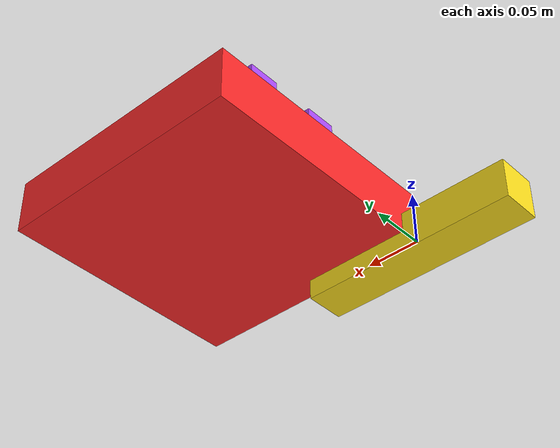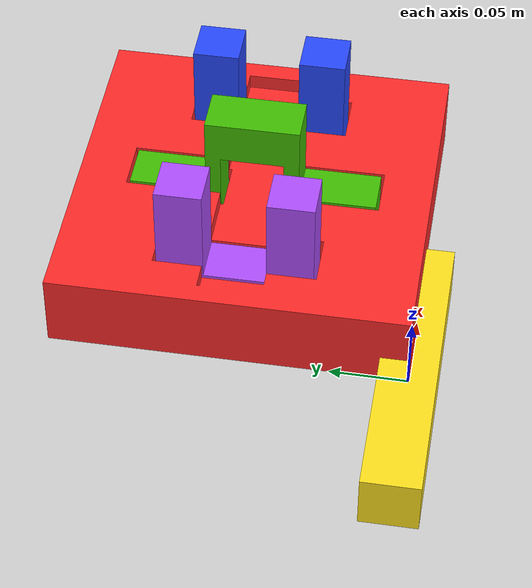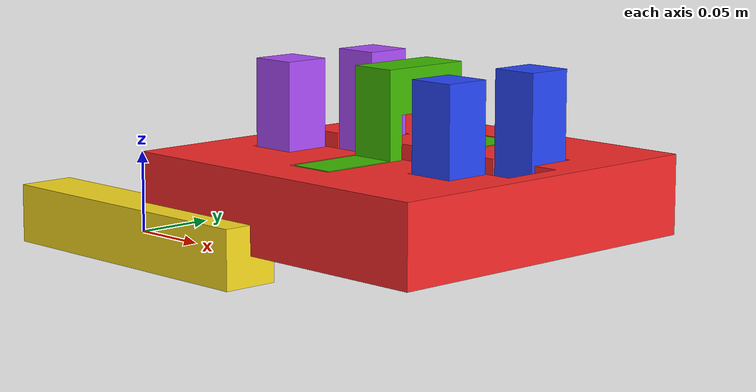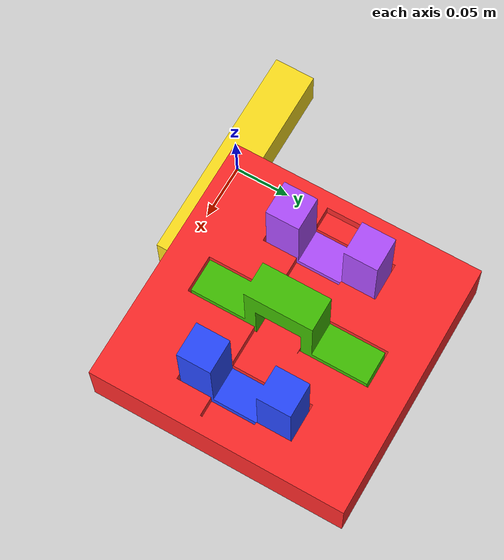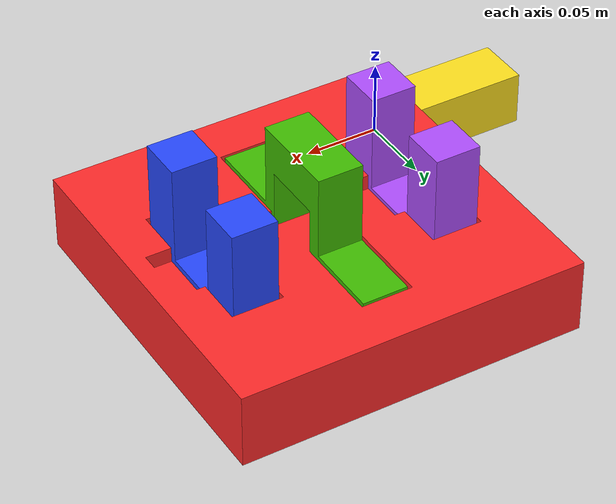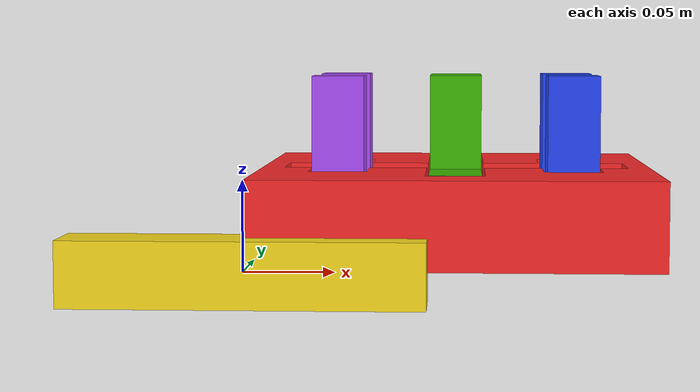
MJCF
<?xml version='1.0' encoding='utf-8'?>
<mujoco model="assembly1">
  <asset>
    <mesh name="obj1" file="meshes/assembly1/obj1.obj" scale="0.001 0.001 0.001" />
    <mesh name="obj2" file="meshes/assembly1/obj2.obj" scale="0.001 0.001 0.001" />
    <mesh name="obj3" file="meshes/assembly1/obj3.obj" scale="0.001 0.001 0.001" />
    <mesh name="obj4" file="meshes/assembly1/obj4.obj" scale="0.001 0.001 0.001" />
    <mesh name="obj5" file="meshes/assembly1/obj5.obj" scale="0.001 0.001 0.001" />
    <material name="mat1" rgba="1 0.16471 0.16471 1" />
    <material name="mat2" rgba="0.6902 0.30588 1 1" />
    <material name="mat3" rgba="1 0.88235 0.11373 1" />
    <material name="mat4" rgba="0.2549 0.7451 0.00784 1" />
    <material name="mat5" rgba="0.15294 0.28235 1 1" />
  </asset>
  <worldbody>
    <body>
      <body name="object">
        <!-- visual -->
        <geom name="obj1" mesh="obj1" type="mesh" contype="0" conaffinity="0" group="1" material="mat1" />
        <geom name="obj2" mesh="obj2" type="mesh" contype="0" conaffinity="0" group="1" material="mat2" />
        <geom name="obj3" mesh="obj3" type="mesh" contype="0" conaffinity="0" group="1" material="mat3" />
        <geom name="obj4" mesh="obj4" type="mesh" contype="0" conaffinity="0" group="1" material="mat4" />
        <geom name="obj5" mesh="obj5" type="mesh" contype="0" conaffinity="0" group="1" material="mat5" />

        <!-- collision -->
        <geom name="obj1" mesh="obj1" type="mesh" density="500" friction="1 0.005 0.0001" group="0" />
        <geom name="obj2" mesh="obj2" type="mesh" density="500" friction="1 0.005 0.0001" group="0" />
        <geom name="obj3" mesh="obj3" type="mesh" density="500" friction="1 0.005 0.0001" group="0" />
        <geom name="obj4" mesh="obj4" type="mesh" density="500" friction="1 0.005 0.0001" group="0" />
        <geom name="obj5" mesh="obj5" type="mesh" density="500" friction="1 0.005 0.0001" group="0" />

        <site name="bottom_site" pos="0 0 -0.025" size="0.005" rgba="0 0 0 0" />
        <site name="top_site" pos="0 0 0.025" size="0.005" rgba="0 0 0 0" />
        <site name="horizontal_radius_site" pos="0.03 0.03 0" size="0.005" rgba="0 0 0 0" />
      </body>
    </body>
  </worldbody>
</mujoco>
